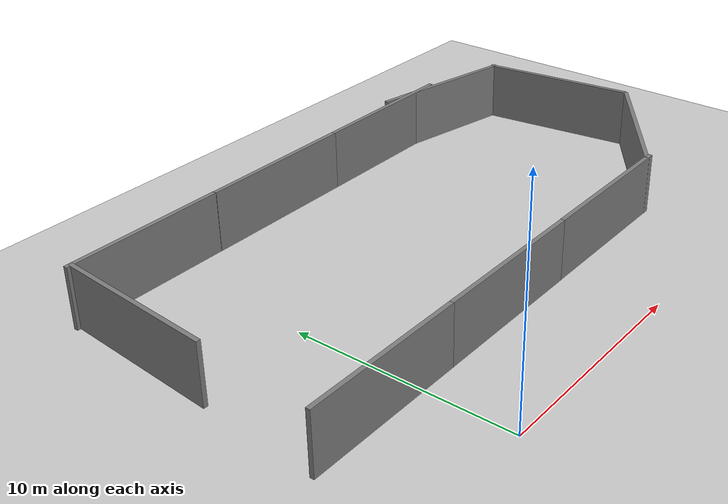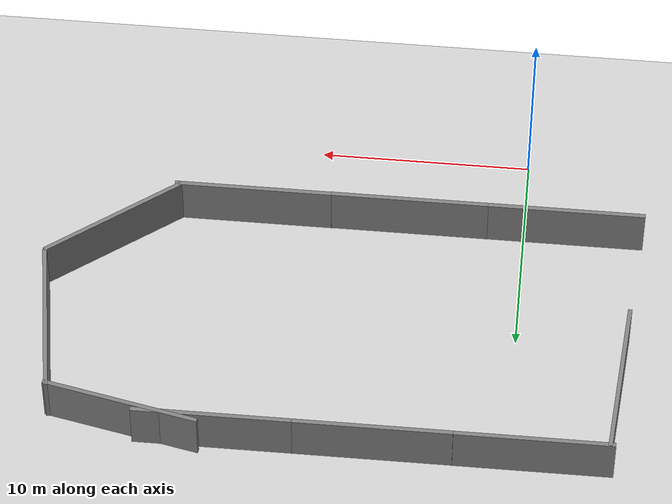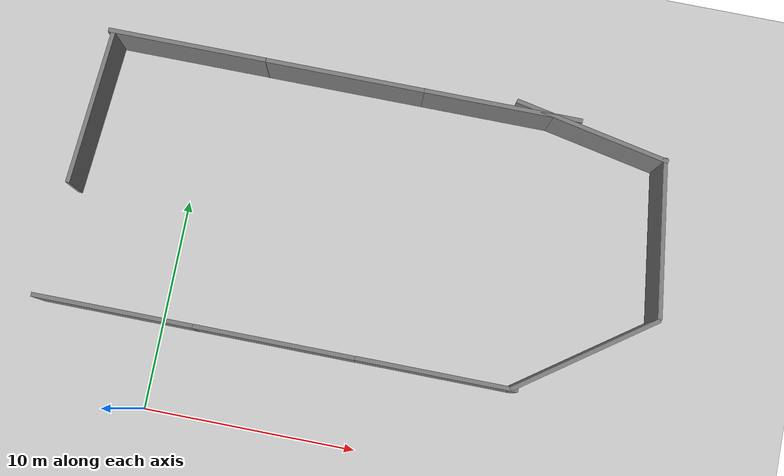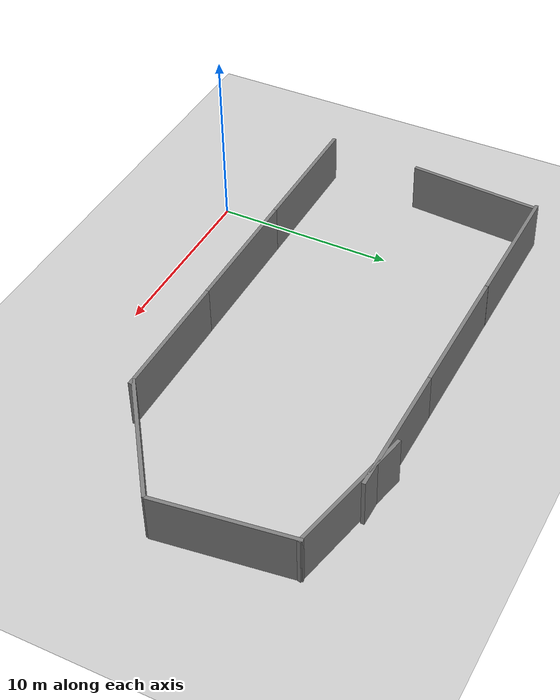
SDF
<sdf version='1.9'>
  <world name="default">
    <include>
  <uri>https://fuel.gazebosim.org/1.0/OpenRobotics/models/Ground Plane</uri>
</include>
  <physics name="1ms" type="ignored">
    <max_step_size>0.001</max_step_size>
    <real_time_factor>1.0</real_time_factor>
  </physics>
  <plugin
    filename="gz-sim-physics-system"
    name="gz::sim::systems::Physics">
  </plugin>
  <plugin
    filename="gz-sim-user-commands-system"
    name="gz::sim::systems::UserCommands">
  </plugin>
  <plugin
    filename="gz-sim-scene-broadcaster-system"
    name="gz::sim::systems::SceneBroadcaster">
  </plugin>
  <plugin
    filename="gz-sim-sensors-system"
    name="gz::sim::systems::Sensors">
    <render_engine>ogre2</render_engine>
  </plugin>
  <plugin
    filename="gz-sim-contact-system"
    name="gz::sim::systems::Contact">
  </plugin>

    <gravity>0 0 -9.8</gravity>
    <magnetic_field>6e-06 2.3e-05 -4.2e-05</magnetic_field>
    <atmosphere type='adiabatic'/>
    <scene>
      <ambient>0.4 0.4 0.4 1</ambient>
      <background>0.7 0.7 0.7 1</background>
      <shadows>1</shadows>
    </scene>
    <spherical_coordinates>
      <surface_model>EARTH_WGS84</surface_model>
      <latitude_deg>0</latitude_deg>
      <longitude_deg>0</longitude_deg>
      <elevation>0</elevation>
      <heading_deg>0</heading_deg>
    </spherical_coordinates>
    <plugin
      filename="gz-sim-imu-system"
      name="gz::sim::systems::Imu">
    </plugin>

    <model name="grey_wall">
    <include>
  <uri>model://Grey Wall</uri>
</include>
<pose relative_to=''>-1.97481 4.11952 0 0 -0 0</pose>
</model>

    <model name="grey_wall_0">
    <include>
  <uri>model://Grey Wall</uri>
</include>
<pose relative_to=''>5.50158 4.1217 0 0 -0 0</pose>
</model>

<model name="grey_wall_1">
    <include>
  <uri>model://Grey Wall</uri>
</include>
<pose relative_to=''>12.9992 4.13078 0 0 -0 0</pose>
</model>

<model name="grey_wall_2">
    <include>
  <uri>model://Grey Wall</uri>
</include>
<pose relative_to=''>19.4503 6.28584 0 0 -0 0.62</pose>
</model>

<model name="grey_wall_3">
    <include>
  <uri>model://Grey Wall</uri>
</include>
<pose relative_to=''>18 16.5 0 0 -0 -0.2</pose>
</model>

<model name="grey_wall_4">
    <include>
  <uri>model://Grey Wall</uri>
</include>
<pose relative_to=''>22 12.2 0 0 -0 1.7</pose>
</model>

<model name="grey_wall_5">
    <include>
  <uri>model://Grey Wall</uri>
</include>
<pose relative_to=''>13.7248 16.882 0 0 -0 0</pose>
</model>

<model name="grey_wall_6">
    <include>
  <uri>model://Grey Wall</uri>
</include>
<pose relative_to=''>6.26537 16.8814 0 0 -0 0</pose>
</model>

<model name="grey_wall_7">
    <include>
  <uri>model://Grey Wall</uri>
</include>
<pose relative_to=''>-1.24766 16.8863 0 0 -0 0</pose>
</model>

<model name="grey_wall_8">
    <include>
  <uri>model://Grey Wall</uri>
</include>
<pose relative_to=''>-5 13.2 0 0 -0 1.5</pose>

</model>

  </world>
</sdf>

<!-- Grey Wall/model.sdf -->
<sdf version="1.5">
  <model name="grey_wall">
    <static>true</static>
    <link name="link">
      <pose>0 0 1.4 0 0 0</pose>
      <collision name="collision">
        <geometry>
          <box>
            <size>7.5 0.2 2.8</size>
          </box>
        </geometry>
      </collision>
      <visual name="visual">
        <cast_shadows>false</cast_shadows>
        <geometry>
          <box>
            <size>7.5 0.2 2.8</size>
          </box>
        </geometry>
        <material>
  <ambient>0.5 0.5 0.5 1</ambient>
  <diffuse>0.5 0.5 0.5 1</diffuse>
  <specular>0.1 0.1 0.1 1</specular>
</material>

      </visual>
    </link>
  </model>
</sdf>
